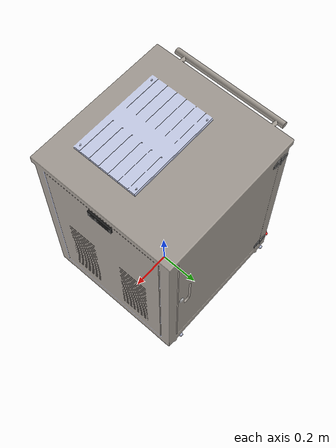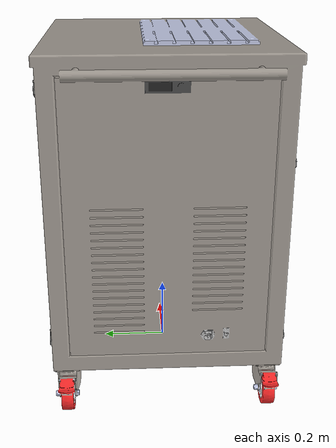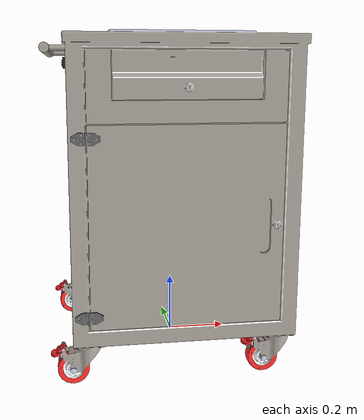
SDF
<?xml version="1.0" ?>
<sdf version="1.6">
  <model name="workbench">
    <static>true</static>
    <link name="link">
      <collision name="collision">
        <geometry>
          <mesh>
            <scale>1 1 1</scale>
            <uri>model://workbench/meshes/UR3eTrolley_decimated.dae</uri>
          </mesh>
        </geometry>
      </collision>
      <visual name="visual">
        <geometry>
          <mesh>
            <scale>1 1 1</scale>
            <uri>model://workbench/meshes/UR3eTrolley_decimated.dae</uri>
          </mesh>
        </geometry>
      </visual>
    </link>
  </model>
</sdf>
